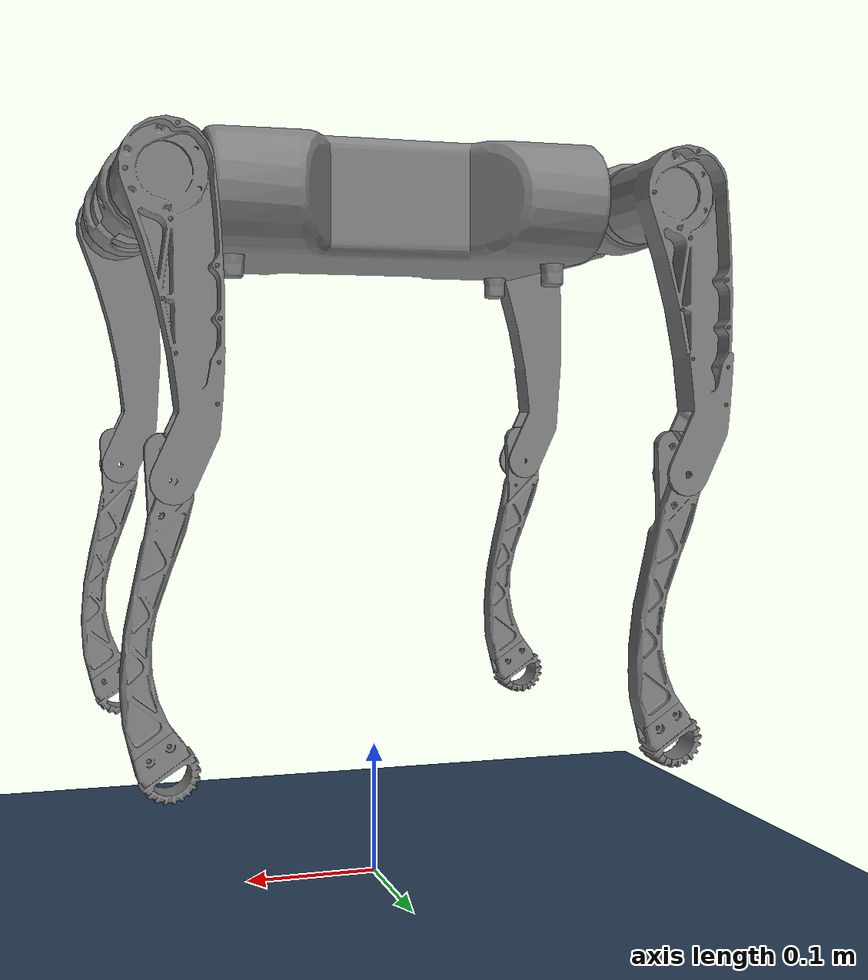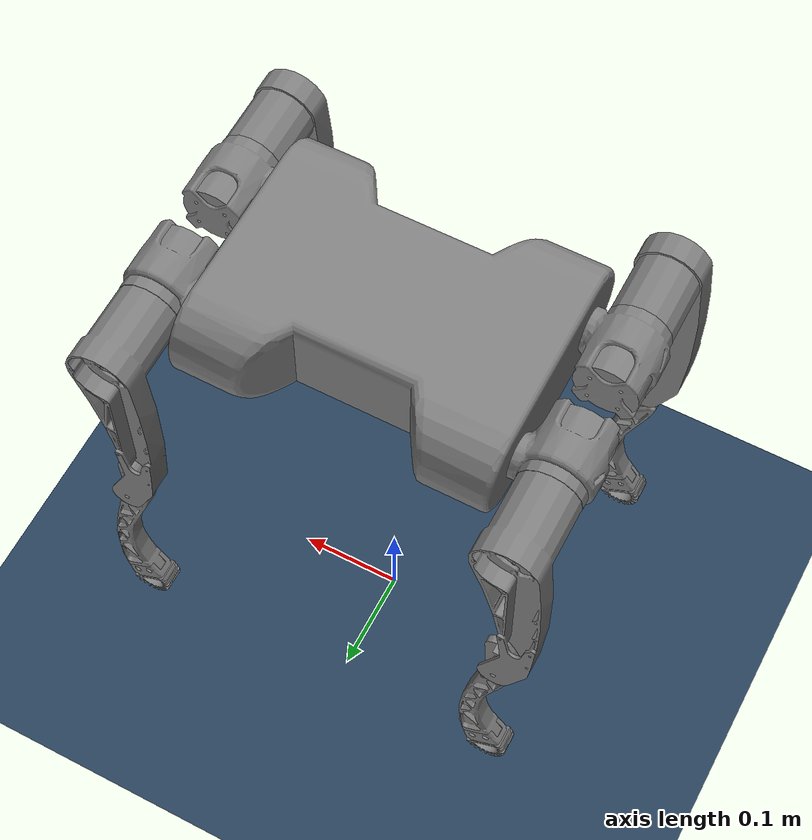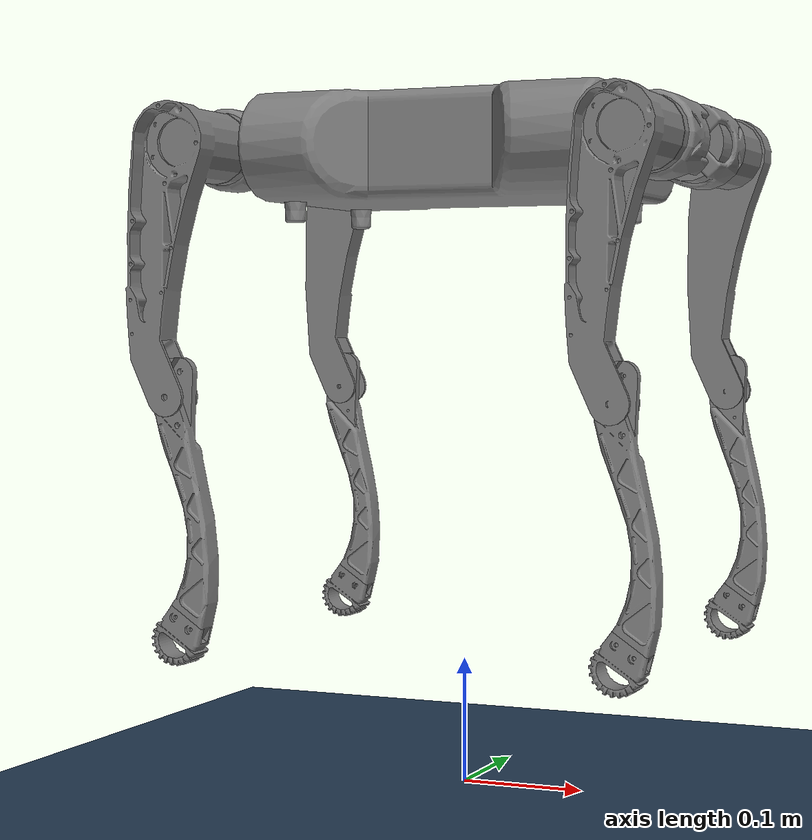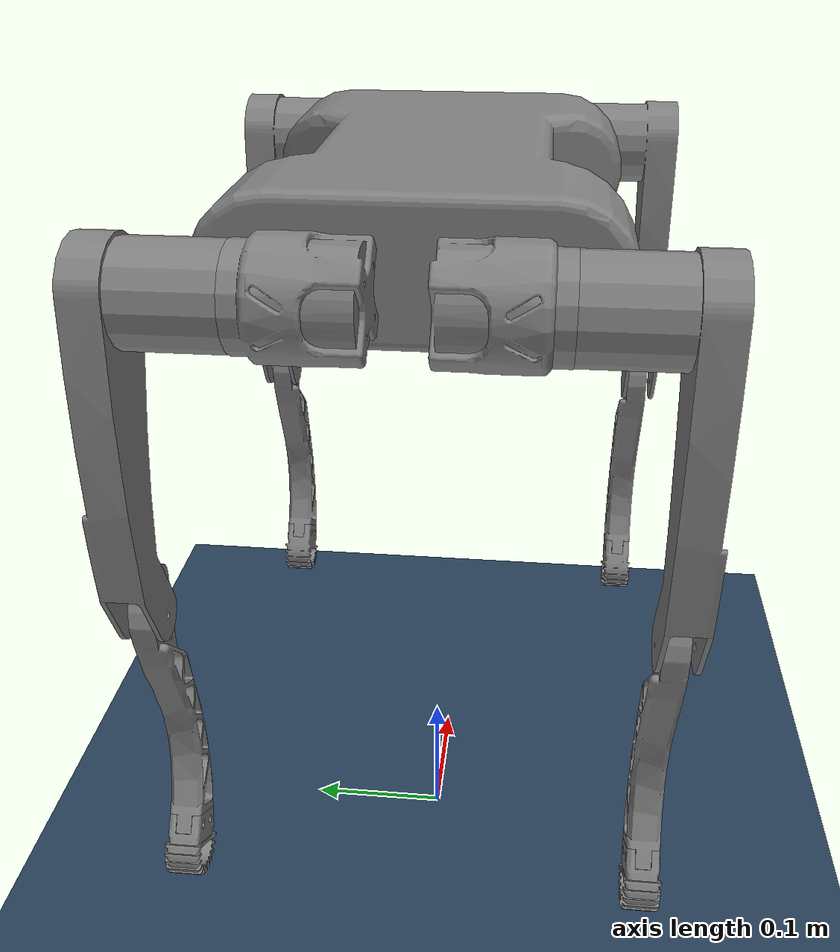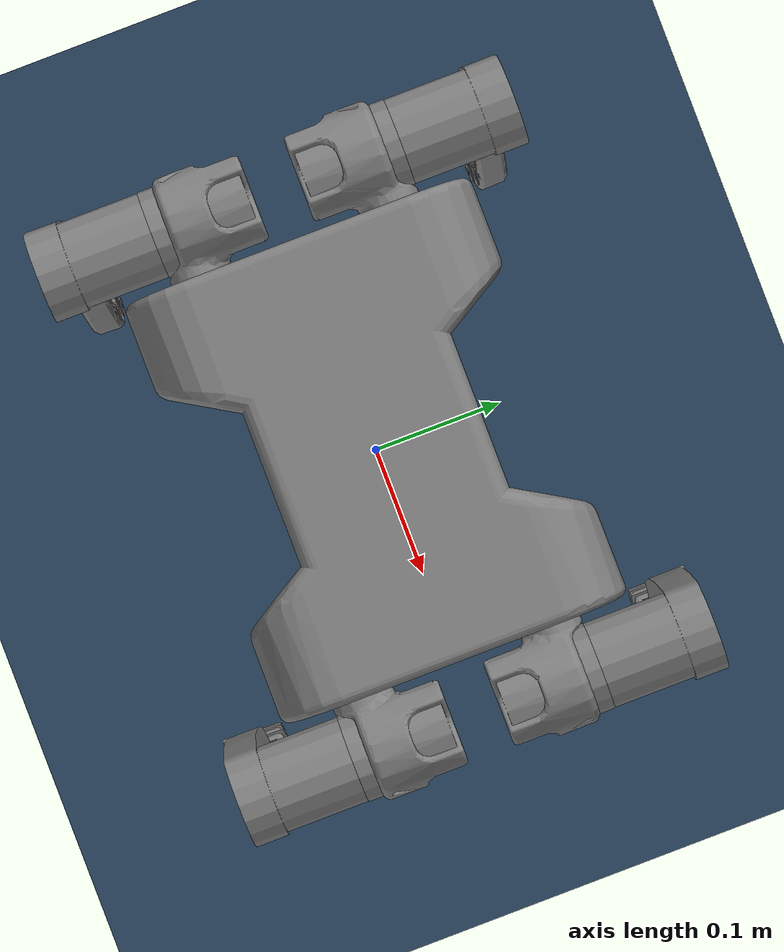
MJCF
<mujoco model="Little white scene">
  <include file="little_white_v3.xml"/>

  <statistic center="0 0 0.1" extent="0.8"/>

  <visual>
    <headlight diffuse="0.6 0.6 0.6" ambient="0.3 0.3 0.3" specular="0 0 0"/>
    <rgba haze="0.15 0.25 0.35 1"/>
    <global azimuth="-130" elevation="-20"/>
  </visual>

  <asset>
    <texture type="skybox" builtin="gradient" rgb1="0.3 0.5 0.7" rgb2="0 0 0" width="512" height="3072"/>
    <texture type="2d" name="groundplane" builtin="checker" mark="edge" rgb1="0.2 0.3 0.4" rgb2="0.1 0.2 0.3"
      markrgb="0.8 0.8 0.8" width="300" height="300"/>
    <material name="groundplane" texture="groundplane" texuniform="true" texrepeat="5 5" reflectance="0.2"/>
  </asset>

  <worldbody>
    <light pos="0 0 1.5" dir="0 0 -1" directional="true"/>
    <geom name="floor" size="0 0 0.05" type="plane" material="groundplane"
      contype="1" conaffinity="0" condim="3" friction="1 0.005 0.0005"/>

  </worldbody>
</mujoco>

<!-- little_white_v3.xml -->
<mujoco model="generated_robot">
  <compiler angle="radian" />
  <default>
    <geom friction="0.4" margin="0.001" condim="1"  />
    <joint damping="0.02" armature="0.004" frictionloss="0.1"/>
    <default class="hip">
      <joint axis="1 0 0" range="-1.0472 1.0472"/>
      <motor ctrlrange="-27 27"/>
    </default>
    <default class="thigh">
      <joint axis="0 1 0" range="-1.5708 1.5708" />
      <motor ctrlrange="-27 27"/>
    </default>
    <default class="calf">
      <joint axis="0 1 0" range="-2.78 0" />
      <motor ctrlrange="-27 27"/>
    </default>
    <default class="visual">
      <geom contype="0" conaffinity="0" group="2" mass="0" />
    </default>
    <default class="collision">
      <geom group="3" contype="0" conaffinity="1" solref="0.01 1"/>
      <default class="foot">
        <geom size="0.022" pos="-0.002 0 -0.213" priority="1" condim="3"
          friction="0.4 0.02 0.01"/>
      </default>
    </default>
  </default>
  <asset>
    <mesh name="part_001_solid_001" file="meshes/part_001_solid_001.stl" scale="0.001 0.001 0.001" />
    <mesh name="part_004_solid_004" file="meshes/part_004_solid_004.stl" scale="0.001 0.001 0.001" />
    <mesh name="part_002_solid_002" file="meshes/part_002_solid_002.stl" scale="0.001 0.001 0.001" />
    <mesh name="part_003_solid_003" file="meshes/part_003_solid_003.stl" scale="0.001 0.001 0.001" />
    <mesh name="part_005_solid_005" file="meshes/part_005_solid_005.stl" scale="0.001 0.001 0.001" />
    <mesh name="part_012_solid_012" file="meshes/part_012_solid_012.stl" scale="0.001 0.001 0.001" />
    <mesh name="part_010_solid_010" file="meshes/part_010_solid_010.stl" scale="0.001 0.001 0.001" />
    <mesh name="part_011_solid_011" file="meshes/part_011_solid_011.stl" scale="0.001 0.001 0.001" />
    <mesh name="part_013_solid_013" file="meshes/part_013_solid_013.stl" scale="0.001 0.001 0.001" />
    <mesh name="part_016_solid_016" file="meshes/part_016_solid_016.stl" scale="0.001 0.001 0.001" />
    <mesh name="part_014_solid_014" file="meshes/part_014_solid_014.stl" scale="0.001 0.001 0.001" />
    <mesh name="part_015_solid_015" file="meshes/part_015_solid_015.stl" scale="0.001 0.001 0.001" />
    <mesh name="part_017_solid_017" file="meshes/part_017_solid_017.stl" scale="0.001 0.001 0.001" />
    <mesh name="part_008_solid_008" file="meshes/part_008_solid_008.stl" scale="0.001 0.001 0.001" />
    <mesh name="part_006_solid_006" file="meshes/part_006_solid_006.stl" scale="0.001 0.001 0.001" />
    <mesh name="part_007_solid_007" file="meshes/part_007_solid_007.stl" scale="0.001 0.001 0.001" />
    <mesh name="part_009_solid_009" file="meshes/part_009_solid_009.stl" scale="0.001 0.001 0.001" />
  </asset>
  <worldbody>
    <body name="base_link" pos="0 0 0.5">
      <freejoint name="root_freejoint" />
      <site name="imu" pos="0 0 0" size="0.005" rgba="0 0 0 0" />
      <inertial pos="1.0001092e-06 4.3170748e-10 0.0078429831" mass="3.3" quat="1 -2.0982208e-07 -5.7044994e-05 -9.5520418e-10" diaginertia="0.012110839 0.027347278 0.035650761" />
      <geom name="base_link_visual" type="mesh" mesh="part_001_solid_001" pos="0 0 0.008" euler="0 0 0" class="visual" />
      <geom name="base_link_collision" type="box" size="0.14225 0.1175 0.0505" pos="0 0 0" class="collision" />
      <body name="FR_Hip_link" pos="0.14025 -0.065 0.008">
        <joint name="FR_hip_joint" class="hip" />
        <inertial pos="0.036273224 0.014080145 -2.972646e-06" mass="0.424" quat="0.9866879 0.00020292697 8.0362638e-05 -0.16262514" diaginertia="0.00025114211 0.00021632098 0.00026844231" />
        <geom name="FR_Hip_visual" type="mesh" mesh="part_004_solid_004" pos="-0.14025 0.065 0" euler="0 0 0" class="visual" />
        <geom name="FR_Hip_collision" type="cylinder" size="0.035 0.036375" pos="0.04 0.01525 0" euler="1.57079632679 1.57079632679 0" class="collision" />
        <body name="FR_Thigh_link" pos="0.038 0.0139565 0">
          <joint name="FR_thigh_joint" class="thigh" />
          <inertial pos="-0.0033482955 -0.0729403 -0.029495593" mass="0.7" quat="0.99055532 -0.12729352 0.050868465 -0.002986626" diaginertia="0.0024534273 0.0023982199 0.00035349994" />
          <geom name="FR_Thigh_visual" type="mesh" mesh="part_002_solid_002" pos="-0.17825 0.0510435 0" euler="0 0 0" class="visual" />
          <geom name="FR_Thigh_motor_collision" type="cylinder" size="0.035 0.0375" pos="0 -0.075 0" euler="1.57079632679 0 0" class="collision" />
          <geom name="FR_Thigh_body_collision" type="box" size="0.02 0.0125 0.08" pos="-0.016 -0.1 -0.11" euler="0 0.15 0" class="collision" />
          <body name="FR_Calf_link" pos="-0.0013103131 -0.1108335 -0.19482217">
            <joint name="FR_calf_joint" class="calf" />
            <inertial pos="0.011984502 0.01490326 -0.084211679" mass="0.04" quat="0.99817692 0.0028823425 -0.056513946 0.020992911" diaginertia="0.00014760355 0.00014983082 4.0189278e-06" />
            <geom name="FR_Calf_visual" type="mesh" mesh="part_003_solid_003" pos="-0.17693969 0.161877 0.19482217" euler="0 0 0" class="visual" />
            <geom name="FR_Calf_collision" type="box" size="0.01 0.015 0.08" pos="0.008 0.012 -0.08" euler="0 -0.2 0" class="collision" />
            <body name="FR_Foot_link" pos="-0.17693969 0.161877 0.19482217">
              <inertial pos="0.18085106 -0.14645474 -0.38077391" mass="0.01" quat="0.96325499 -0.0018163118 -0.26857906 0.0013501294" diaginertia="1.6671745e-06 2.3916253e-06 1.5920954e-06" />
              <geom name="FR_Foot_visual" type="mesh" mesh="part_005_solid_005" pos="0 0 0" euler="0 0 0" class="visual" />
              <geom name="FR_Foot_collision" type="sphere" size="0.02" pos="0.18085106 -0.14645474 -0.38077391" class="collision" />
            </body>
          </body>
        </body>
      </body>
      <body name="FL_Hip_link" pos="0.14025 0.065000002 0.007999999">
        <joint name="FL_hip_joint" class="hip" />
        <inertial pos="0.03627342 -0.014080067 -1.8343334e-06" mass="0.424" quat="0.98668738 -0.00011257004 -0.00017020105 0.16262831" diaginertia="0.00025114341 0.00021631894 0.00026844157" />
        <geom name="FL_Hip_visual" type="mesh" mesh="part_012_solid_012" pos="-0.14025 -0.065000002 1.01e-09" euler="0 0 0" class="visual" />
        <geom name="FL_Hip_collision" type="cylinder" size="0.035 0.036375" pos="0.04 -0.01525 0" euler="1.57079632679 1.57079632679 0" class="collision" />
        <body name="FL_Thigh_link" pos="0.038 -0.014998435 1.01e-09">
          <joint name="FL_thigh_joint" class="thigh" />
          <inertial pos="-0.0033483429 0.073982221 -0.029495544" mass="0.7" quat="0.99055533 0.12729377 0.050867177 0.0029953258" diaginertia="0.0024534297 0.0023982233 0.00035350168" />
          <geom name="FL_Thigh_visual" type="mesh" mesh="part_010_solid_010" pos="-0.17825 -0.050001567 0" euler="0 0 0" class="visual" />
          <geom name="FL_Thigh_motor_collision" type="cylinder" size="0.035 0.0375" pos="0 0.075 0" euler="1.57079632679 0 0" class="collision" />
          <geom name="FL_Thigh_body_collision" type="box" size="0.02 0.0125 0.08" pos="-0.016 0.1 -0.11" euler="0 0.15 0" class="collision" />
          <body name="FL_Calf_link" pos="-0.0013103131 0.11187543 -0.19482217">
            <joint name="FL_calf_joint" class="calf" />
            <inertial pos="0.011984508 -0.014903264 -0.084211673" mass="0.04" quat="0.99817691 -0.0028823159 -0.056513941 -0.020993316" diaginertia="0.00014760347 0.00014983074 4.0189295e-06" />
            <geom name="FL_Calf_visual" type="mesh" mesh="part_011_solid_011" pos="-0.17693969 -0.161877 0.19482217" euler="0 0 0" class="visual" />
            <geom name="FL_Calf_collision" type="box" size="0.01 0.015 0.08" pos="0.008 -0.012 -0.08" euler="0 -0.2 0" class="collision" />
            <body name="FL_Foot_link" pos="-0.17693969 -0.161877 0.19482217">
              <inertial pos="0.18085106 0.14645474 -0.38077391" mass="0.01" quat="0.96325498 0.0018163132 -0.26857906 -0.0013501275" diaginertia="1.6671745e-06 2.3916253e-06 1.5920954e-06" />
              <geom name="FL_Foot_visual" type="mesh" mesh="part_013_solid_013" pos="0 0 0" euler="0 0 0" class="visual" />
              <geom name="FL_Foot_collision" type="sphere" size="0.02" pos="0.18085106 0.14645474 -0.38077391" class="collision" />
            </body>
          </body>
        </body>
      </body>
      <body name="RL_Hip_link" pos="-0.14225 0.065000002 0.007999999">
        <joint name="RL_hip_joint" class="hip" />
        <inertial pos="-0.03427342 -0.014080067 1.8363604e-06" mass="0.424" quat="0.98668738 0.00011256952 -0.00017020146 -0.16262831" diaginertia="0.00025114341 0.00021631894 0.00026844157" />
        <geom name="RL_Hip_visual" type="mesh" mesh="part_016_solid_016" pos="0.14225 -0.065000002 1.01e-09" euler="0 0 0" class="visual" />
        <geom name="RL_Hip_collision" type="cylinder" size="0.035 0.036375" pos="-0.04 -0.01525 0" euler="1.57079632679 1.57079632679 0" class="collision" />
        <body name="RL_Thigh_link" pos="-0.036 -0.013956502 1.01e-09">
          <joint name="RL_thigh_joint" class="thigh" />
          <inertial pos="-0.0033813806 0.072940294 -0.029495514" mass="0.7" quat="0.99051823 0.12668516 0.052544667 -0.0079724177" diaginertia="0.0024536987 0.0023989131 0.00035401002" />
          <geom name="RL_Thigh_visual" type="mesh" mesh="part_014_solid_014" pos="0.17825 -0.0510435 0" euler="0 0 0" class="visual" />
          <geom name="RL_Thigh_motor_collision" type="cylinder" size="0.035 0.0375" pos="0 0.075 0" euler="1.57079632679 0 0" class="collision" />
          <geom name="RL_Thigh_body_collision" type="box" size="0.02 0.0125 0.08" pos="-0.016 0.1 -0.11" euler="0 0.15 0" class="collision" />
          <body name="RL_Calf_link" pos="-0.0013103131 0.1108335 -0.19482217">
            <joint name="RL_calf_joint" class="calf" />
            <inertial pos="0.011983461 -0.01490346 -0.084211094" mass="0.04" quat="0.99818677 -0.0029068574 -0.056531251 -0.020467993" diaginertia="0.00014760743 0.00014983298 4.0185402e-06" />
            <geom name="RL_Calf_visual" type="mesh" mesh="part_015_solid_015" pos="0.17956031 -0.161877 0.19482217" euler="0 0 0" class="visual" />
            <geom name="RL_Calf_collision" type="box" size="0.01 0.015 0.08" pos="0.008 -0.012 -0.08" euler="0 -0.2 0" class="collision" />
            <body name="RL_Foot_link" pos="0.17956031 -0.161877 0.19482217">
              <inertial pos="-0.17564894 0.14645474 -0.38077391" mass="0.01" quat="0.96325498 0.0018163132 -0.26857906 -0.0013501275" diaginertia="1.6671745e-06 2.3916253e-06 1.5920954e-06" />
              <geom name="RL_Foot_visual" type="mesh" mesh="part_017_solid_017" pos="0 0 0" euler="0 0 0" class="visual" />
              <geom name="RL_Foot_collision" type="sphere" size="0.02" pos="-0.17564894 0.14645474 -0.38077391" class="collision" />
            </body>
          </body>
        </body>
      </body>
      <body name="RR_Hip_link" pos="-0.14025 -0.065 0.008">
        <joint name="RR_hip_joint" class="hip" />
        <inertial pos="-0.036273224 0.014080145 2.9726575e-06" mass="0.424" quat="0.9866879 -0.00020292687 8.0362823e-05 0.16262514" diaginertia="0.00025114211 0.00021632098 0.00026844231" />
        <geom name="RR_Hip_visual" type="mesh" mesh="part_008_solid_008" pos="0.14025 0.065 0" euler="0 0 0" class="visual" />
        <geom name="RR_Hip_collision" type="cylinder" size="0.035 0.036375" pos="-0.04 0.01525 0" euler="1.57079632679 1.57079632679 0" class="collision" />
        <body name="RR_Thigh_link" pos="-0.038 0.014998433 0">
          <joint name="RR_thigh_joint" class="thigh" />
          <inertial pos="-0.0033813331 -0.073982239 -0.029495563" mass="0.7" quat="0.99051813 -0.12668489 0.052545932 0.0079809668" diaginertia="0.0024536964 0.0023989097 0.00035400829" />
          <geom name="RR_Thigh_visual" type="mesh" mesh="part_006_solid_006" pos="0.17825 0.050001567 0" euler="0 0 0" class="visual" />
          <geom name="RR_Thigh_motor_collision" type="cylinder" size="0.035 0.0375" pos="0 -0.075 0" euler="1.57079632679 0 0" class="collision" />
          <geom name="RR_Thigh_body_collision" type="box" size="0.02 0.0125 0.08" pos="-0.016 -0.1 -0.11" euler="0 0.15 0" class="collision" />
          <body name="RR_Calf_link" pos="-0.0013188508 -0.089835433 -0.19482211">
            <joint name="RR_calf_joint" class="calf" />
            <inertial pos="0.011991993 -0.0071365441 -0.084211157" mass="0.04" quat="0.99818678 0.0029068841 -0.056531256 0.020467587" diaginertia="0.00014760751 0.00014983305 4.0185385e-06" />
            <geom name="RR_Calf_visual" type="mesh" mesh="part_007_solid_007" pos="0.17956885 0.139837 0.19482211" euler="0 0 0" class="visual" />
            <geom name="RR_Calf_collision" type="box" size="0.01 0.015 0.08" pos="0.008 -0.012 -0.08" euler="0 -0.2 0" class="collision" />
            <body name="RR_Foot_link" pos="0.17956885 0.139837 0.19482211">
              <inertial pos="-0.17564894 -0.14645474 -0.38077391" mass="0.01" quat="0.96325499 -0.0018163118 -0.26857906 0.0013501294" diaginertia="1.6671745e-06 2.3916253e-06 1.5920954e-06" />
              <geom name="RR_Foot_visual" type="mesh" mesh="part_009_solid_009" pos="0 0 0" euler="0 0 0" class="visual" />
              <geom name="RR_Foot_collision" type="sphere" size="0.02" pos="-0.17564894 -0.14645474 -0.38077391" class="collision" />
            </body>
          </body>
        </body>
      </body>
    </body>
  </worldbody>
  <actuator>
    <motor class="hip" name="FL_hip" joint="FL_hip_joint" />
    <motor class="thigh" name="FL_thigh" joint="FL_thigh_joint" />
    <motor class="calf" name="FL_calf" joint="FL_calf_joint" />

    <motor class="hip" name="FR_hip" joint="FR_hip_joint" />
    <motor class="thigh" name="FR_thigh" joint="FR_thigh_joint" />
    <motor class="calf" name="FR_calf" joint="FR_calf_joint" />

    <motor class="hip" name="RL_hip" joint="RL_hip_joint" />
    <motor class="thigh" name="RL_thigh" joint="RL_thigh_joint" />
    <motor class="calf" name="RL_calf" joint="RL_calf_joint" />

    <motor class="hip" name="RR_hip" joint="RR_hip_joint" />
    <motor class="thigh" name="RR_thigh" joint="RR_thigh_joint" />
    <motor class="calf" name="RR_calf" joint="RR_calf_joint" />
  </actuator>
  <sensor>
    <jointpos name="FL_hip_pos" joint="FL_hip_joint" />
    <jointpos name="FL_thigh_pos" joint="FL_thigh_joint" />
    <jointpos name="FL_calf_pos" joint="FL_calf_joint" />

    <jointpos name="FR_hip_pos" joint="FR_hip_joint" />
    <jointpos name="FR_thigh_pos" joint="FR_thigh_joint" />
    <jointpos name="FR_calf_pos" joint="FR_calf_joint" />
    <jointpos name="RL_hip_pos" joint="RL_hip_joint" />
    <jointpos name="RL_thigh_pos" joint="RL_thigh_joint" />
    <jointpos name="RL_calf_pos" joint="RL_calf_joint" />

    <jointpos name="RR_hip_pos" joint="RR_hip_joint" />
    <jointpos name="RR_thigh_pos" joint="RR_thigh_joint" />
    <jointpos name="RR_calf_pos" joint="RR_calf_joint" />

    <jointvel name="FL_hip_vel" joint="FL_hip_joint" />
    <jointvel name="FL_thigh_vel" joint="FL_thigh_joint" />
    <jointvel name="FL_calf_vel" joint="FL_calf_joint" />

    <jointvel name="FR_hip_vel" joint="FR_hip_joint" />
    <jointvel name="FR_thigh_vel" joint="FR_thigh_joint" />
    <jointvel name="FR_calf_vel" joint="FR_calf_joint" />
    <jointvel name="RL_hip_vel" joint="RL_hip_joint" />
    <jointvel name="RL_thigh_vel" joint="RL_thigh_joint" />
    <jointvel name="RL_calf_vel" joint="RL_calf_joint" />

    <jointvel name="RR_hip_vel" joint="RR_hip_joint" />
    <jointvel name="RR_thigh_vel" joint="RR_thigh_joint" />
    <jointvel name="RR_calf_vel" joint="RR_calf_joint" />

    <jointactuatorfrc name="FL_hip_torque" joint="FL_hip_joint" noise="0.01" />
    <jointactuatorfrc name="FL_thigh_torque" joint="FL_thigh_joint" noise="0.01" />
    <jointactuatorfrc name="FL_calf_torque" joint="FL_calf_joint" noise="0.01" />

    <jointactuatorfrc name="FR_hip_torque" joint="FR_hip_joint" noise="0.01" />
    <jointactuatorfrc name="FR_thigh_torque" joint="FR_thigh_joint" noise="0.01" />
    <jointactuatorfrc name="FR_calf_torque" joint="FR_calf_joint" noise="0.01" />
    <jointactuatorfrc name="RL_hip_torque" joint="RL_hip_joint" noise="0.01" />
    <jointactuatorfrc name="RL_thigh_torque" joint="RL_thigh_joint" noise="0.01" />
    <jointactuatorfrc name="RL_calf_torque" joint="RL_calf_joint" noise="0.01" />

    <jointactuatorfrc name="RR_hip_torque" joint="RR_hip_joint" noise="0.01" />
    <jointactuatorfrc name="RR_thigh_torque" joint="RR_thigh_joint" noise="0.01" />
    <jointactuatorfrc name="RR_calf_torque" joint="RR_calf_joint" noise="0.01" />

    <framequat name="imu_quat" objtype="site" objname="imu" />
    <gyro name="imu_gyro" site="imu" />
    <accelerometer name="imu_acc" site="imu" />

    <framepos name="frame_pos" objtype="site" objname="imu" />
    <framelinvel name="frame_vel" objtype="site" objname="imu" />
    <frameangvel name="frame_ang_vel" objtype="site" objname="imu" />
  </sensor>
</mujoco>
